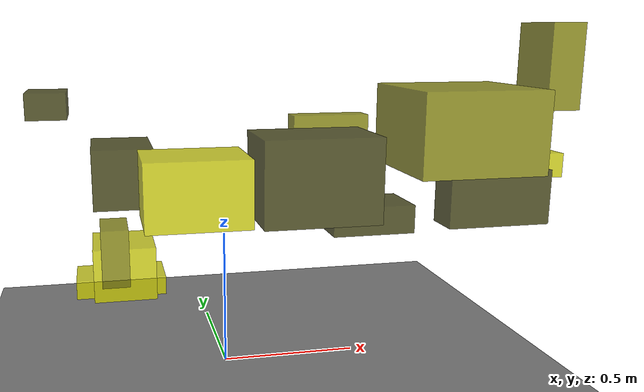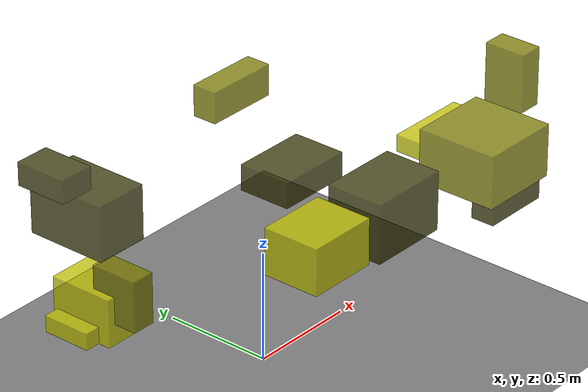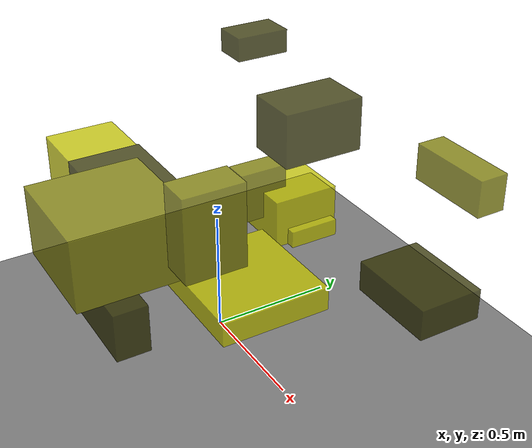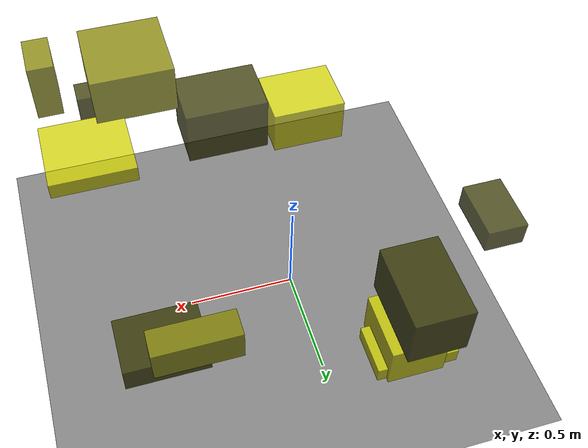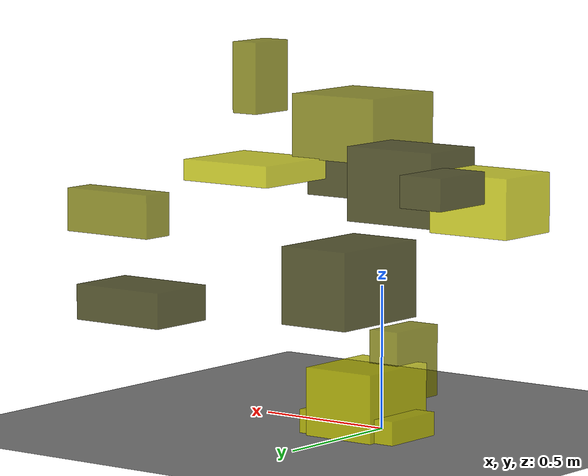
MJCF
<?xml version="1.0"?>
<mujoco model="obstacle_scene">
  <compiler angle="radian" coordinate="local"/>
  <option timestep="0.001" gravity="0 0 -9.81"/>

  <asset>
    <material name="obstacle_mat" rgba="0.8 0.8 0.0 0.8"/>
    <material name="ground_mat" rgba="0.5 0.5 0.5 1"/>
  </asset>

  <worldbody>
    <!-- Ground plane -->
    <geom name="ground" type="plane" size="3 3 0.1" material="ground_mat"/>

    <!-- Obstacles -->
    <body name="obstacle_0" pos="0.708241 0.445108 0.430932">
      <geom name="obs_0" type="box" size="0.182228 0.128721 0.061805" rgba="0.2 0.2 0.0 0.8"/>
    </body>
    <body name="obstacle_1" pos="0.947498 -0.523555 1.125923">
      <geom name="obs_1" type="box" size="0.053726 0.093840 0.131014" rgba="0.5 0.5 0.0 0.8"/>
    </body>
    <body name="obstacle_2" pos="-0.356044 0.566146 0.227740">
      <geom name="obs_2" type="box" size="0.130719 0.154106 0.112517" rgba="0.8 0.8 0.0 0.8"/>
    </body>
    <body name="obstacle_3" pos="0.210332 -0.452118 0.790641">
      <geom name="obs_3" type="box" size="0.184044 0.131744 0.133828" rgba="0.2 0.2 0.0 0.8"/>
    </body>
    <body name="obstacle_4" pos="0.601171 0.689629 0.781802">
      <geom name="obs_4" type="box" size="0.174789 0.059013 0.073719" rgba="0.5 0.5 0.0 0.8"/>
    </body>
    <body name="obstacle_5" pos="-0.371273 0.584589 0.155101">
      <geom name="obs_5" type="box" size="0.188664 0.115042 0.038993" rgba="0.8 0.8 0.0 0.8"/>
    </body>
    <body name="obstacle_6" pos="-0.347850 0.649329 0.625328">
      <geom name="obs_6" type="box" size="0.127700 0.193075 0.127330" rgba="0.2 0.2 0.0 0.8"/>
    </body>
    <body name="obstacle_7" pos="-0.395576 0.413916 0.331834">
      <geom name="obs_7" type="box" size="0.055798 0.112089 0.118977" rgba="0.5 0.5 0.0 0.8"/>
    </body>
    <body name="obstacle_8" pos="0.833732 -0.348055 0.808048">
      <geom name="obs_8" type="box" size="0.190190 0.174994 0.038416" rgba="0.8 0.8 0.0 0.8"/>
    </body>
    <body name="obstacle_9" pos="0.676877 -0.711949 0.762995">
      <geom name="obs_9" type="box" size="0.153529 0.054052 0.079516" rgba="0.2 0.2 0.0 0.8"/>
    </body>
    <body name="obstacle_10" pos="0.582074 -0.664298 0.959530">
      <geom name="obs_10" type="box" size="0.183369 0.182848 0.117541" rgba="0.5 0.5 0.0 0.8"/>
    </body>
    <body name="obstacle_11" pos="-0.158484 -0.414190 0.758747">
      <geom name="obs_11" type="box" size="0.162332 0.132380 0.106023" rgba="0.8 0.8 0.0 0.8"/>
    </body>
    <body name="obstacle_12" pos="-0.639638 0.540729 0.938268">
      <geom name="obs_12" type="box" size="0.080104 0.121986 0.053032" rgba="0.2 0.2 0.0 0.8"/>
    </body>
  </worldbody>
</mujoco>
